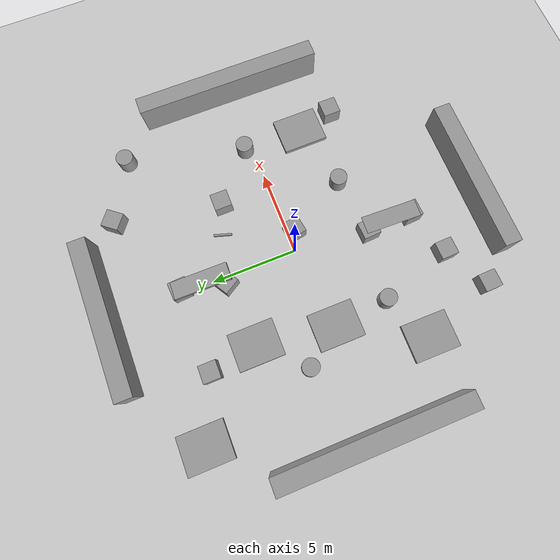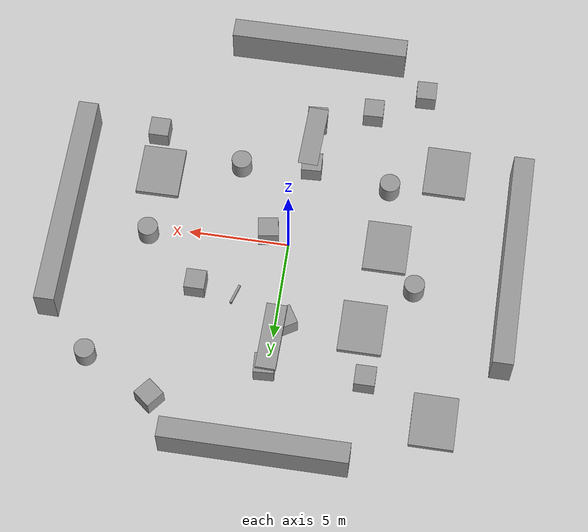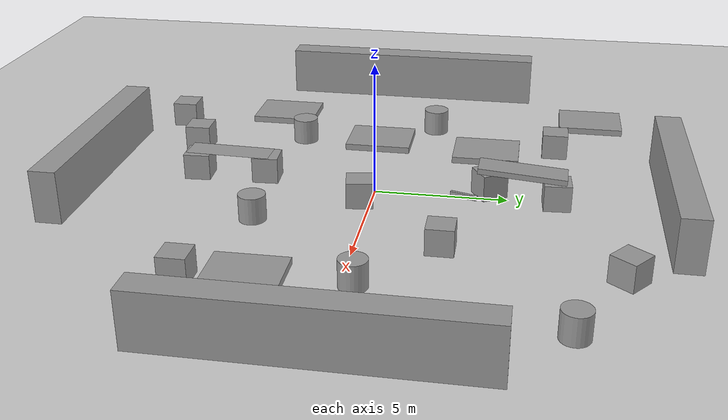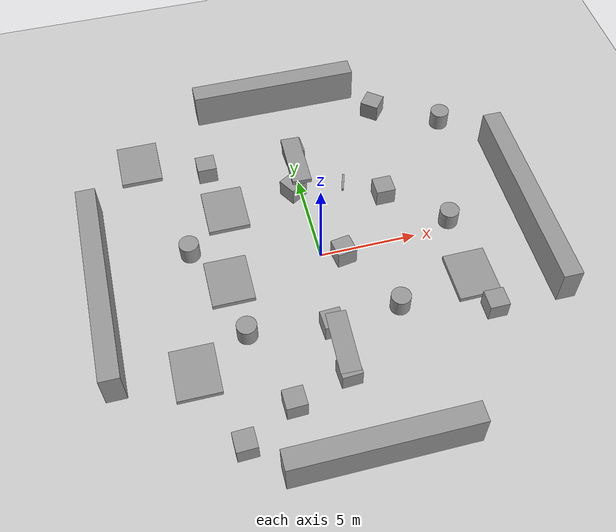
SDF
<sdf version="1.6">
 <world name="default">
  <model name="ground_plane">
   <static>1</static>
   <link name="link">
    <collision name="collision">
     <geometry><plane><normal>0 0 1</normal><size>100 100</size></plane></geometry>
     <surface><friction><ode><mu>100</mu><mu2>50</mu2></ode></friction></surface>
    </collision>
    <visual name="visual">
     <geometry><plane><normal>0 0 1</normal><size>100 100</size></plane></geometry>
     <material>
      <script><uri>file://media/materials/scripts/gazebo.material</uri><name>Gazebo/Grey</name></script>
     </material>
    </visual>
   </link>
  </model>
  <light name="sun" type="directional">
   <pose>0 0 10 0 -0 0</pose>
   <diffuse>0.8 0.8 0.8 1</diffuse>
   <specular>0.1 0.1 0.1 1</specular>
   <attenuation>
    <range>1000</range>
    <constant>0.9</constant>
    <linear>0.01</linear>
    <quadratic>0.001</quadratic>
   </attenuation>
   <direction>-0.5 0.5 -1</direction>
  </light>
  <gravity>0 0 -9.8</gravity>
  <magnetic_field>6e-06 2.3e-05 -4.2e-05</magnetic_field>
  <atmosphere type="adiabatic"/>
  <physics name="default_physics" default="0" type="ode">
   <max_step_size>0.001</max_step_size>
   <real_time_factor>1</real_time_factor>
   <real_time_update_rate>1000</real_time_update_rate>
  </physics>
  <scene><ambient>0.4 0.4 0.4 1</ambient><background>0.7 0.7 0.7 1</background><shadows>1</shadows></scene>
  <spherical_coordinates>
   <surface_model>EARTH_WGS84</surface_model>
   <latitude_deg>0</latitude_deg>
   <longitude_deg>0</longitude_deg>
   <elevation>0</elevation>
   <heading_deg>0</heading_deg>
  </spherical_coordinates>
  <model name="unit_box_0">
   <pose>1.06942 -0.384952 0.5 0 -0 0.155615</pose>
   <link name="link">
    <inertial>
     <mass>1</mass>
     <inertia>
      <ixx>0.166667</ixx>
      <ixy>0</ixy>
      <ixz>0</ixz>
      <iyy>0.166667</iyy>
      <iyz>0</iyz>
      <izz>0.166667</izz>
     </inertia>
    </inertial>
    <collision name="collision"><geometry><box><size>1 1 1</size></box></geometry></collision>
    <visual name="visual">
     <geometry><box><size>1 1 1</size></box></geometry>
     <material>
      <script><name>Gazebo/Grey</name><uri>file://media/materials/scripts/gazebo.material</uri></script>
     </material>
    </visual>
   </link>
  </model>
  <model name="unit_box_1">
   <pose>4.14475 2.92314 0.499938 -0.000134 7.1e-05 0.002618</pose>
   <link name="link">
    <inertial>
     <mass>1</mass>
     <inertia>
      <ixx>0.166667</ixx>
      <ixy>0</ixy>
      <ixz>0</ixz>
      <iyy>0.166667</iyy>
      <iyz>0</iyz>
      <izz>0.166667</izz>
     </inertia>
    </inertial>
    <collision name="collision"><geometry><box><size>1 1 1</size></box></geometry></collision>
    <visual name="visual">
     <geometry><box><size>1 1 1</size></box></geometry>
     <material>
      <script><name>Gazebo/Grey</name><uri>file://media/materials/scripts/gazebo.material</uri></script>
     </material>
    </visual>
   </link>
  </model>
  <model name="unit_box_2">
   <pose>-3.22993 -7.86911 0.499995 1e-05 -0 0.028295</pose>
   <link name="link">
    <inertial>
     <mass>1</mass>
     <inertia>
      <ixx>0.166667</ixx>
      <ixy>0</ixy>
      <ixz>0</ixz>
      <iyy>0.166667</iyy>
      <iyz>0</iyz>
      <izz>0.166667</izz>
     </inertia>
    </inertial>
    <collision name="collision"><geometry><box><size>1 1 1</size></box></geometry></collision>
    <visual name="visual">
     <geometry><box><size>1 1 1</size></box></geometry>
     <material>
      <script><name>Gazebo/Grey</name><uri>file://media/materials/scripts/gazebo.material</uri></script>
     </material>
    </visual>
   </link>
  </model>
  <model name="unit_box_3">
   <pose>-4.67305 6.69604 0.499995 0 1e-05 5e-06</pose>
   <link name="link">
    <inertial>
     <mass>1</mass>
     <inertia>
      <ixx>0.166667</ixx>
      <ixy>0</ixy>
      <ixz>0</ixz>
      <iyy>0.166667</iyy>
      <iyz>0</iyz>
      <izz>0.166667</izz>
     </inertia>
    </inertial>
    <collision name="collision"><geometry><box><size>1 1 1</size></box></geometry></collision>
    <visual name="visual">
     <geometry><box><size>1 1 1</size></box></geometry>
     <material>
      <script><name>Gazebo/Grey</name><uri>file://media/materials/scripts/gazebo.material</uri></script>
     </material>
    </visual>
   </link>
  </model>
  <model name="unit_cylinder_0">
   <pose>2.96648 -3.93403 0.499996 0 -0 0</pose>
   <link name="link">
    <inertial>
     <mass>1</mass>
     <inertia><ixx>0.145833</ixx><ixy>0</ixy><ixz>0</ixz><iyy>0.145833</iyy><iyz>0</iyz><izz>0.125</izz></inertia>
    </inertial>
    <collision name="collision">
     <geometry><cylinder><radius>0.5</radius><length>1</length></cylinder></geometry>
    </collision>
    <visual name="visual">
     <geometry><cylinder><radius>0.5</radius><length>1</length></cylinder></geometry>
     <material>
      <script><name>Gazebo/Grey</name><uri>file://media/materials/scripts/gazebo.material</uri></script>
     </material>
    </visual>
   </link>
  </model>
  <model name="unit_cylinder_1">
   <pose>8.76021 7.30253 0.499994 -2e-06 -1e-06 0</pose>
   <link name="link">
    <inertial>
     <mass>1</mass>
     <inertia><ixx>0.145833</ixx><ixy>0</ixy><ixz>0</ixz><iyy>0.145833</iyy><iyz>0</iyz><izz>0.125</izz></inertia>
    </inertial>
    <collision name="collision">
     <geometry><cylinder><radius>0.5</radius><length>1</length></cylinder></geometry>
    </collision>
    <visual name="visual">
     <geometry><cylinder><radius>0.5</radius><length>1</length></cylinder></geometry>
     <material>
      <script><name>Gazebo/Grey</name><uri>file://media/materials/scripts/gazebo.material</uri></script>
     </material>
    </visual>
   </link>
  </model>
  <model name="unit_cylinder_2">
   <pose>6.95642 0.454556 0.499993 -2e-06 -1e-06 0</pose>
   <link name="link">
    <inertial>
     <mass>1</mass>
     <inertia><ixx>0.145833</ixx><ixy>0</ixy><ixz>0</ixz><iyy>0.145833</iyy><iyz>0</iyz><izz>0.125</izz></inertia>
    </inertial>
    <collision name="collision">
     <geometry><cylinder><radius>0.5</radius><length>1</length></cylinder></geometry>
    </collision>
    <visual name="visual">
     <geometry><cylinder><radius>0.5</radius><length>1</length></cylinder></geometry>
     <material>
      <script><name>Gazebo/Grey</name><uri>file://media/materials/scripts/gazebo.material</uri></script>
     </material>
    </visual>
   </link>
  </model>
  <model name="unit_cylinder_3">
   <pose>-6.42329 1.64638 0.499994 -2e-06 -1e-06 0</pose>
   <link name="link">
    <inertial>
     <mass>1</mass>
     <inertia><ixx>0.145833</ixx><ixy>0</ixy><ixz>0</ixz><iyy>0.145833</iyy><iyz>0</iyz><izz>0.125</izz></inertia>
    </inertial>
    <collision name="collision">
     <geometry><cylinder><radius>0.5</radius><length>1</length></cylinder></geometry>
    </collision>
    <visual name="visual">
     <geometry><cylinder><radius>0.5</radius><length>1</length></cylinder></geometry>
     <material>
      <script><name>Gazebo/Grey</name><uri>file://media/materials/scripts/gazebo.material</uri></script>
     </material>
    </visual>
   </link>
  </model>
  <model name="unit_cylinder_4">
   <pose>-4.56149 -3.69378 0.499996 3e-06 1e-06 0.023266</pose>
   <link name="link">
    <inertial>
     <mass>1</mass>
     <inertia><ixx>0.145833</ixx><ixy>0</ixy><ixz>0</ixz><iyy>0.145833</iyy><iyz>0</iyz><izz>0.125</izz></inertia>
    </inertial>
    <collision name="collision">
     <geometry><cylinder><radius>0.5</radius><length>1</length></cylinder></geometry>
    </collision>
    <visual name="visual">
     <geometry><cylinder><radius>0.5</radius><length>1</length></cylinder></geometry>
     <material>
      <script><name>Gazebo/Grey</name><uri>file://media/materials/scripts/gazebo.material</uri></script>
     </material>
    </visual>
   </link>
  </model>
  <model name="unit_box_4">
   <pose>-0.418773 4.28779 0.500028 -5.1e-05 1.7e-05 0.54443</pose>
   <link name="link">
    <inertial>
     <mass>1</mass>
     <inertia>
      <ixx>0.166667</ixx>
      <ixy>0</ixy>
      <ixz>0</ixz>
      <iyy>0.166667</iyy>
      <iyz>0</iyz>
      <izz>0.166667</izz>
     </inertia>
    </inertial>
    <collision name="collision"><geometry><box><size>1 1 1</size></box></geometry></collision>
    <visual name="visual">
     <geometry><box><size>1 1 1</size></box></geometry>
     <material>
      <script><name>Gazebo/Grey</name><uri>file://media/materials/scripts/gazebo.material</uri></script>
     </material>
    </visual>
   </link>
  </model>
  <model name="unit_box_5">
   <pose>0.156212 6.77671 0.500133 -2.5e-05 0.000242 0.056935</pose>
   <link name="link">
    <inertial>
     <mass>1</mass>
     <inertia>
      <ixx>0.166667</ixx>
      <ixy>0</ixy>
      <ixz>0</ixz>
      <iyy>0.166667</iyy>
      <iyz>0</iyz>
      <izz>0.166667</izz>
     </inertia>
    </inertial>
    <collision name="collision"><geometry><box><size>1 1 1</size></box></geometry></collision>
    <visual name="visual">
     <geometry><box><size>1 1 1</size></box></geometry>
     <material>
      <script><name>Gazebo/Grey</name><uri>file://media/materials/scripts/gazebo.material</uri></script>
     </material>
    </visual>
   </link>
  </model>
  <model name="unit_box_7">
   <pose>5.31472 9.05606 0.5 0 0 -0.670764</pose>
   <link name="link">
    <inertial>
     <mass>1</mass>
     <inertia>
      <ixx>0.166667</ixx>
      <ixy>0</ixy>
      <ixz>0</ixz>
      <iyy>0.166667</iyy>
      <iyz>0</iyz>
      <izz>0.166667</izz>
     </inertia>
    </inertial>
    <collision name="collision"><geometry><box><size>1 1 1</size></box></geometry></collision>
    <visual name="visual">
     <geometry><box><size>1 1 1</size></box></geometry>
     <material>
      <script><name>Gazebo/Grey</name><uri>file://media/materials/scripts/gazebo.material</uri></script>
     </material>
    </visual>
   </link>
  </model>
  <model name="unit_box_8">
   <pose>7.37176 -5.18708 0.499995 -0 1e-05 0.001532</pose>
   <link name="link">
    <inertial>
     <mass>1</mass>
     <inertia>
      <ixx>0.166667</ixx>
      <ixy>0</ixy>
      <ixz>0</ixz>
      <iyy>0.166667</iyy>
      <iyz>0</iyz>
      <izz>0.166667</izz>
     </inertia>
    </inertial>
    <collision name="collision"><geometry><box><size>1 1 1</size></box></geometry></collision>
    <visual name="visual">
     <geometry><box><size>1 1 1</size></box></geometry>
     <material>
      <script><name>Gazebo/Grey</name><uri>file://media/materials/scripts/gazebo.material</uri></script>
     </material>
    </visual>
   </link>
  </model>
  <model name="unit_box_9">
   <pose>-0.449121 -6.9933 0.499998 4e-06 -0 0.053153</pose>
   <link name="link">
    <inertial>
     <mass>1</mass>
     <inertia>
      <ixx>0.166667</ixx>
      <ixy>0</ixy>
      <ixz>0</ixz>
      <iyy>0.166667</iyy>
      <iyz>0</iyz>
      <izz>0.166667</izz>
     </inertia>
    </inertial>
    <collision name="collision"><geometry><box><size>1 1 1</size></box></geometry></collision>
    <visual name="visual">
     <geometry><box><size>1 1 1</size></box></geometry>
     <material>
      <script><name>Gazebo/Grey</name><uri>file://media/materials/scripts/gazebo.material</uri></script>
     </material>
    </visual>
   </link>
  </model>
  <model name="unit_box_12_clone">
   <pose>-4.8413 -0.517135 0.125765 0 5e-06 0</pose>
   <link name="link">
    <inertial>
     <mass>1</mass>
     <inertia>
      <ixx>0.166667</ixx>
      <ixy>0</ixy>
      <ixz>0</ixz>
      <iyy>0.166667</iyy>
      <iyz>0</iyz>
      <izz>0.166667</izz>
     </inertia>
    </inertial>
    <collision name="collision"><geometry><box><size>2.14743 2.63582 0.25154</size></box></geometry></collision>
    <visual name="visual">
     <geometry><box><size>2.14743 2.63582 0.25154</size></box></geometry>
     <material>
      <script><name>Gazebo/Grey</name><uri>file://media/materials/scripts/gazebo.material</uri></script>
     </material>
    </visual>
   </link>
  </model>
  <model name="unit_box_12_clone_0">
   <pose>-7.30435 -5.11106 0.125765 -0 5e-06 -0.006631</pose>
   <link name="link">
    <inertial>
     <mass>1</mass>
     <inertia>
      <ixx>0.166667</ixx>
      <ixy>0</ixy>
      <ixz>0</ixz>
      <iyy>0.166667</iyy>
      <iyz>0</iyz>
      <izz>0.166667</izz>
     </inertia>
    </inertial>
    <collision name="collision"><geometry><box><size>2.14743 2.63582 0.25154</size></box></geometry></collision>
    <visual name="visual">
     <geometry><box><size>2.14743 2.63582 0.25154</size></box></geometry>
     <material>
      <script><name>Gazebo/Grey</name><uri>file://media/materials/scripts/gazebo.material</uri></script>
     </material>
    </visual>
   </link>
  </model>
  <model name="unit_box_12_clone_1">
   <pose>-4.20009 3.95523 0.125765 0 5e-06 0</pose>
   <link name="link">
    <inertial>
     <mass>1</mass>
     <inertia>
      <ixx>0.166667</ixx>
      <ixy>0</ixy>
      <ixz>0</ixz>
      <iyy>0.166667</iyy>
      <iyz>0</iyz>
      <izz>0.166667</izz>
     </inertia>
    </inertial>
    <collision name="collision"><geometry><box><size>2.14743 2.63582 0.25154</size></box></geometry></collision>
    <visual name="visual">
     <geometry><box><size>2.14743 2.63582 0.25154</size></box></geometry>
     <material>
      <script><name>Gazebo/Grey</name><uri>file://media/materials/scripts/gazebo.material</uri></script>
     </material>
    </visual>
   </link>
  </model>
  <model name="unit_box_12_clone_2">
   <pose>-8.1557 8.23748 0.125765 0 5e-06 0</pose>
   <link name="link">
    <inertial>
     <mass>1</mass>
     <inertia>
      <ixx>0.166667</ixx>
      <ixy>0</ixy>
      <ixz>0</ixz>
      <iyy>0.166667</iyy>
      <iyz>0</iyz>
      <izz>0.166667</izz>
     </inertia>
    </inertial>
    <collision name="collision"><geometry><box><size>2.14743 2.63582 0.25154</size></box></geometry></collision>
    <visual name="visual">
     <geometry><box><size>2.14743 2.63582 0.25154</size></box></geometry>
     <material>
      <script><name>Gazebo/Grey</name><uri>file://media/materials/scripts/gazebo.material</uri></script>
     </material>
    </visual>
   </link>
  </model>
  <model name="unit_box_12_clone_3">
   <pose>6.9636 -3.08752 0.125765 0 -5e-06 0.006376</pose>
   <link name="link">
    <inertial>
     <mass>1</mass>
     <inertia>
      <ixx>0.166667</ixx>
      <ixy>0</ixy>
      <ixz>0</ixz>
      <iyy>0.166667</iyy>
      <iyz>0</iyz>
      <izz>0.166667</izz>
     </inertia>
    </inertial>
    <collision name="collision"><geometry><box><size>2.14743 2.63582 0.25154</size></box></geometry></collision>
    <visual name="visual">
     <geometry><box><size>2.14743 2.63582 0.25154</size></box></geometry>
     <material>
      <script><name>Gazebo/Grey</name><uri>file://media/materials/scripts/gazebo.material</uri></script>
     </material>
    </visual>
   </link>
  </model>
  <model name="unit_box_13_0">
   <link name="link">
    <inertial>
     <mass>1</mass>
     <inertia>
      <ixx>0.166667</ixx>
      <ixy>0</ixy>
      <ixz>0</ixz>
      <iyy>0.166667</iyy>
      <iyz>0</iyz>
      <izz>0.166667</izz>
     </inertia>
    </inertial>
    <visual name="visual">
     <geometry><box><size>8.93977 1 1.99601</size></box></geometry>
     <material>
      <script><name>Gazebo/Grey</name><uri>file://media/materials/scripts/gazebo.material</uri></script>
      <ambient>0.3 0.3 0.3 1</ambient>
      <diffuse>0.7 0.7 0.7 1</diffuse>
      <specular>0.01 0.01 0.01 1</specular>
      <emissive>0 0 0 1</emissive>
     </material>
    </visual>
    <collision name="collision">
     <geometry><box><size>8.93977 1 1.99601</size></box></geometry>
     <surface>
      <friction>
       <ode><mu>1</mu><mu2>1</mu2><fdir1>0 0 0</fdir1><slip1>0</slip1><slip2>0</slip2></ode>
       <torsional>
        <coefficient>1</coefficient>
        <patch_radius>0</patch_radius>
        <surface_radius>0</surface_radius>
        <use_patch_radius>1</use_patch_radius>
        <ode><slip>0</slip></ode>
       </torsional>
      </friction>
      <bounce><restitution_coefficient>0</restitution_coefficient><threshold>1e+06</threshold></bounce>
      <contact>
       <collide_without_contact>0</collide_without_contact>
       <collide_without_contact_bitmask>1</collide_without_contact_bitmask>
       <collide_bitmask>1</collide_bitmask>
       <ode>
        <soft_cfm>0</soft_cfm>
        <soft_erp>0.2</soft_erp>
        <kp>1e+13</kp>
        <kd>1</kd>
        <max_vel>0.01</max_vel>
        <min_depth>0</min_depth>
       </ode>
       <bullet>
        <split_impulse>1</split_impulse>
        <split_impulse_penetration_threshold>-0.01</split_impulse_penetration_threshold>
        <soft_cfm>0</soft_cfm>
        <soft_erp>0.2</soft_erp>
        <kp>1e+13</kp>
        <kd>1</kd>
       </bullet>
      </contact>
     </surface>
    </collision>
   </link>
   <static>1</static>
   <pose>0 -11 1 0 -0 0</pose>
  </model>
  <model name="unit_box_13_0_clone">
   <link name="link">
    <inertial>
     <mass>1</mass>
     <inertia>
      <ixx>0.166667</ixx>
      <ixy>0</ixy>
      <ixz>0</ixz>
      <iyy>0.166667</iyy>
      <iyz>0</iyz>
      <izz>0.166667</izz>
     </inertia>
    </inertial>
    <visual name="visual">
     <geometry><box><size>8.98505 1 1.99601</size></box></geometry>
     <material>
      <script><name>Gazebo/Grey</name><uri>file://media/materials/scripts/gazebo.material</uri></script>
      <ambient>0.3 0.3 0.3 1</ambient>
      <diffuse>0.7 0.7 0.7 1</diffuse>
      <specular>0.01 0.01 0.01 1</specular>
      <emissive>0 0 0 1</emissive>
     </material>
    </visual>
    <collision name="collision">
     <geometry><box><size>8.98505 1 1.99601</size></box></geometry>
     <surface>
      <friction>
       <ode><mu>1</mu><mu2>1</mu2><fdir1>0 0 0</fdir1><slip1>0</slip1><slip2>0</slip2></ode>
       <torsional>
        <coefficient>1</coefficient>
        <patch_radius>0</patch_radius>
        <surface_radius>0</surface_radius>
        <use_patch_radius>1</use_patch_radius>
        <ode><slip>0</slip></ode>
       </torsional>
      </friction>
      <bounce><restitution_coefficient>0</restitution_coefficient><threshold>1e+06</threshold></bounce>
      <contact>
       <collide_without_contact>0</collide_without_contact>
       <collide_without_contact_bitmask>1</collide_without_contact_bitmask>
       <collide_bitmask>1</collide_bitmask>
       <ode>
        <soft_cfm>0</soft_cfm>
        <soft_erp>0.2</soft_erp>
        <kp>1e+13</kp>
        <kd>1</kd>
        <max_vel>0.01</max_vel>
        <min_depth>0</min_depth>
       </ode>
       <bullet>
        <split_impulse>1</split_impulse>
        <split_impulse_penetration_threshold>-0.01</split_impulse_penetration_threshold>
        <soft_cfm>0</soft_cfm>
        <soft_erp>0.2</soft_erp>
        <kp>1e+13</kp>
        <kd>1</kd>
       </bullet>
      </contact>
     </surface>
    </collision>
   </link>
   <static>1</static>
   <pose>0 11 1 0 -0 0</pose>
  </model>
  <model name="unit_box_13_0_clone_0">
   <link name="link">
    <inertial>
     <mass>1</mass>
     <inertia>
      <ixx>0.166667</ixx>
      <ixy>0</ixy>
      <ixz>0</ixz>
      <iyy>0.166667</iyy>
      <iyz>0</iyz>
      <izz>0.166667</izz>
     </inertia>
    </inertial>
    <visual name="visual">
     <geometry><box><size>11.0932 1 1.99601</size></box></geometry>
     <material>
      <script><name>Gazebo/Grey</name><uri>file://media/materials/scripts/gazebo.material</uri></script>
      <ambient>0.3 0.3 0.3 1</ambient>
      <diffuse>0.7 0.7 0.7 1</diffuse>
      <specular>0.01 0.01 0.01 1</specular>
      <emissive>0 0 0 1</emissive>
     </material>
    </visual>
    <collision name="collision">
     <geometry><box><size>11.0932 1 1.99601</size></box></geometry>
     <surface>
      <friction>
       <ode><mu>1</mu><mu2>1</mu2><fdir1>0 0 0</fdir1><slip1>0</slip1><slip2>0</slip2></ode>
       <torsional>
        <coefficient>1</coefficient>
        <patch_radius>0</patch_radius>
        <surface_radius>0</surface_radius>
        <use_patch_radius>1</use_patch_radius>
        <ode><slip>0</slip></ode>
       </torsional>
      </friction>
      <bounce><restitution_coefficient>0</restitution_coefficient><threshold>1e+06</threshold></bounce>
      <contact>
       <collide_without_contact>0</collide_without_contact>
       <collide_without_contact_bitmask>1</collide_without_contact_bitmask>
       <collide_bitmask>1</collide_bitmask>
       <ode>
        <soft_cfm>0</soft_cfm>
        <soft_erp>0.2</soft_erp>
        <kp>1e+13</kp>
        <kd>1</kd>
        <max_vel>0.01</max_vel>
        <min_depth>0</min_depth>
       </ode>
       <bullet>
        <split_impulse>1</split_impulse>
        <split_impulse_penetration_threshold>-0.01</split_impulse_penetration_threshold>
        <soft_cfm>0</soft_cfm>
        <soft_erp>0.2</soft_erp>
        <kp>1e+13</kp>
        <kd>1</kd>
       </bullet>
      </contact>
     </surface>
    </collision>
   </link>
   <static>1</static>
   <pose>-11 0 1 0 -0 1.57</pose>
  </model>
  <model name="unit_box_13_0_clone_1">
   <link name="link">
    <inertial>
     <mass>1</mass>
     <inertia>
      <ixx>0.166667</ixx>
      <ixy>0</ixy>
      <ixz>0</ixz>
      <iyy>0.166667</iyy>
      <iyz>0</iyz>
      <izz>0.166667</izz>
     </inertia>
    </inertial>
    <visual name="visual">
     <geometry><box><size>10.936 1 1.99601</size></box></geometry>
     <material>
      <script><name>Gazebo/Grey</name><uri>file://media/materials/scripts/gazebo.material</uri></script>
      <ambient>0.3 0.3 0.3 1</ambient>
      <diffuse>0.7 0.7 0.7 1</diffuse>
      <specular>0.01 0.01 0.01 1</specular>
      <emissive>0 0 0 1</emissive>
     </material>
    </visual>
    <collision name="collision">
     <geometry><box><size>10.936 1 1.99601</size></box></geometry>
     <surface>
      <friction>
       <ode><mu>1</mu><mu2>1</mu2><fdir1>0 0 0</fdir1><slip1>0</slip1><slip2>0</slip2></ode>
       <torsional>
        <coefficient>1</coefficient>
        <patch_radius>0</patch_radius>
        <surface_radius>0</surface_radius>
        <use_patch_radius>1</use_patch_radius>
        <ode><slip>0</slip></ode>
       </torsional>
      </friction>
      <bounce><restitution_coefficient>0</restitution_coefficient><threshold>1e+06</threshold></bounce>
      <contact>
       <collide_without_contact>0</collide_without_contact>
       <collide_without_contact_bitmask>1</collide_without_contact_bitmask>
       <collide_bitmask>1</collide_bitmask>
       <ode>
        <soft_cfm>0</soft_cfm>
        <soft_erp>0.2</soft_erp>
        <kp>1e+13</kp>
        <kd>1</kd>
        <max_vel>0.01</max_vel>
        <min_depth>0</min_depth>
       </ode>
       <bullet>
        <split_impulse>1</split_impulse>
        <split_impulse_penetration_threshold>-0.01</split_impulse_penetration_threshold>
        <soft_cfm>0</soft_cfm>
        <soft_erp>0.2</soft_erp>
        <kp>1e+13</kp>
        <kd>1</kd>
       </bullet>
      </contact>
     </surface>
    </collision>
   </link>
   <static>1</static>
   <pose>11 0 1 0 -0 1.57</pose>
  </model>
  <model name="unit_box_2_clone">
   <pose>-5.77226 -9.29035 0.499995 0 1e-05 0.028295</pose>
   <link name="link">
    <inertial>
     <mass>1</mass>
     <inertia>
      <ixx>0.166667</ixx>
      <ixy>0</ixy>
      <ixz>0</ixz>
      <iyy>0.166667</iyy>
      <iyz>0</iyz>
      <izz>0.166667</izz>
     </inertia>
    </inertial>
    <collision name="collision"><geometry><box><size>1 1 1</size></box></geometry></collision>
    <visual name="visual">
     <geometry><box><size>1 1 1</size></box></geometry>
     <material>
      <script><name>Gazebo/Grey</name><uri>file://media/materials/scripts/gazebo.material</uri></script>
     </material>
    </visual>
   </link>
  </model>
  <model name="unit_box_9_clone">
   <pose>-0.548708 -4.31594 0.499996 0 -7e-06 0.050757</pose>
   <link name="link">
    <inertial>
     <mass>1</mass>
     <inertia>
      <ixx>0.166667</ixx>
      <ixy>0</ixy>
      <ixz>0</ixz>
      <iyy>0.166667</iyy>
      <iyz>0</iyz>
      <izz>0.166667</izz>
     </inertia>
    </inertial>
    <collision name="collision"><geometry><box><size>1 1 1</size></box></geometry></collision>
    <visual name="visual">
     <geometry><box><size>1 1 1</size></box></geometry>
     <material>
      <script><name>Gazebo/Grey</name><uri>file://media/materials/scripts/gazebo.material</uri></script>
     </material>
    </visual>
   </link>
  </model>
  <model name="unit_box_6_clone">
   <pose>-0.410893 -5.71886 1.1076 -1.5708 2e-06 -0.036368</pose>
   <link name="link">
    <inertial>
     <mass>1</mass>
     <inertia>
      <ixx>0.166667</ixx>
      <ixy>0</ixy>
      <ixz>0</ixz>
      <iyy>0.166667</iyy>
      <iyz>0</iyz>
      <izz>0.166667</izz>
     </inertia>
    </inertial>
    <collision name="collision"><geometry><box><size>1 0.00020188 3.25497</size></box></geometry></collision>
    <visual name="visual">
     <geometry><box><size>1 0.00020188 3.25497</size></box></geometry>
     <material>
      <script><name>Gazebo/Grey</name><uri>file://media/materials/scripts/gazebo.material</uri></script>
     </material>
    </visual>
   </link>
  </model>
  <model name="unit_box_6_clone_0">
   <pose>2.08342 3.50719 1.0864 -1.57084 0.000169 1.2692</pose>
   <link name="link">
    <inertial>
     <mass>1</mass>
     <inertia>
      <ixx>0.166667</ixx>
      <ixy>0</ixy>
      <ixz>0</ixz>
      <iyy>0.166667</iyy>
      <iyz>0</iyz>
      <izz>0.166667</izz>
     </inertia>
    </inertial>
    <collision name="collision"><geometry><box><size>1 0.172807 0.108876</size></box></geometry></collision>
    <visual name="visual">
     <geometry><box><size>1 0.172807 0.108876</size></box></geometry>
     <material>
      <script><name>Gazebo/Grey</name><uri>file://media/materials/scripts/gazebo.material</uri></script>
     </material>
    </visual>
   </link>
  </model>
  <model name="unit_box_6_clone_clone">
   <pose>0.015505 5.49737 1.2257 -1.63779 0.018913 -0.027073</pose>
   <link name="link">
    <inertial>
     <mass>1</mass>
     <inertia>
      <ixx>0.166667</ixx>
      <ixy>0</ixy>
      <ixz>0</ixz>
      <iyy>0.166667</iyy>
      <iyz>0</iyz>
      <izz>0.166667</izz>
     </inertia>
    </inertial>
    <collision name="collision"><geometry><box><size>1 0.215202 3.25497</size></box></geometry></collision>
    <visual name="visual">
     <geometry><box><size>1 0.215202 3.25497</size></box></geometry>
     <material>
      <script><name>Gazebo/Grey</name><uri>file://media/materials/scripts/gazebo.material</uri></script>
     </material>
    </visual>
   </link>
  </model>
 </world>
</sdf>
